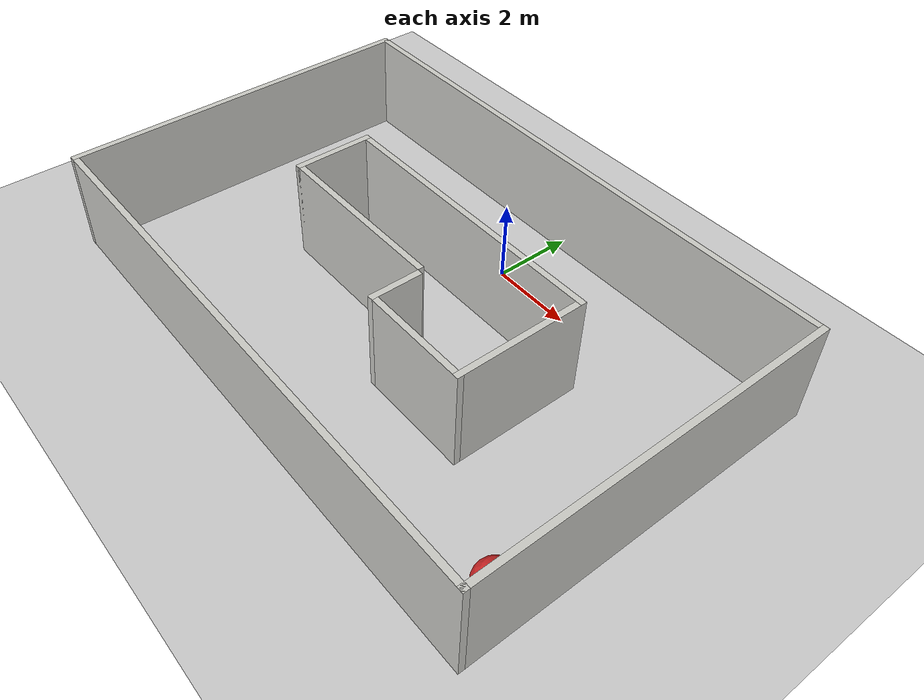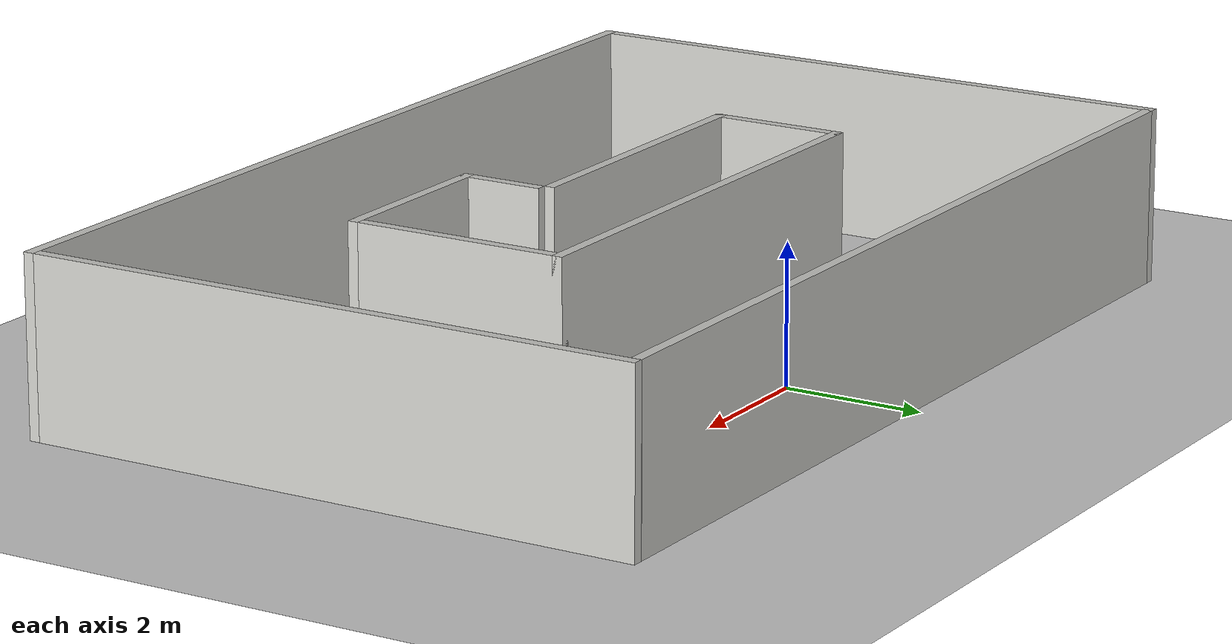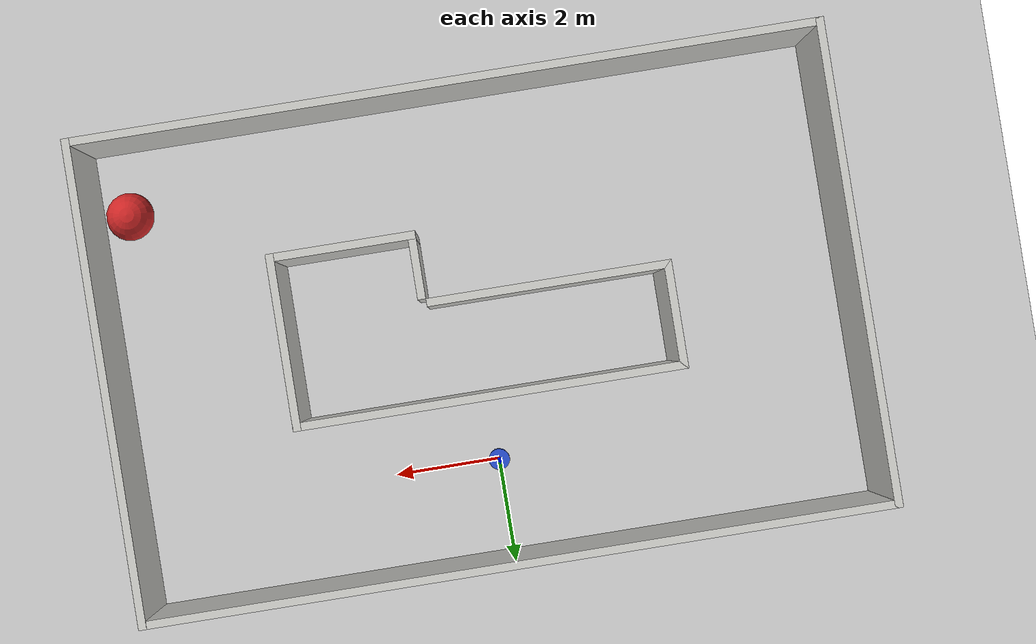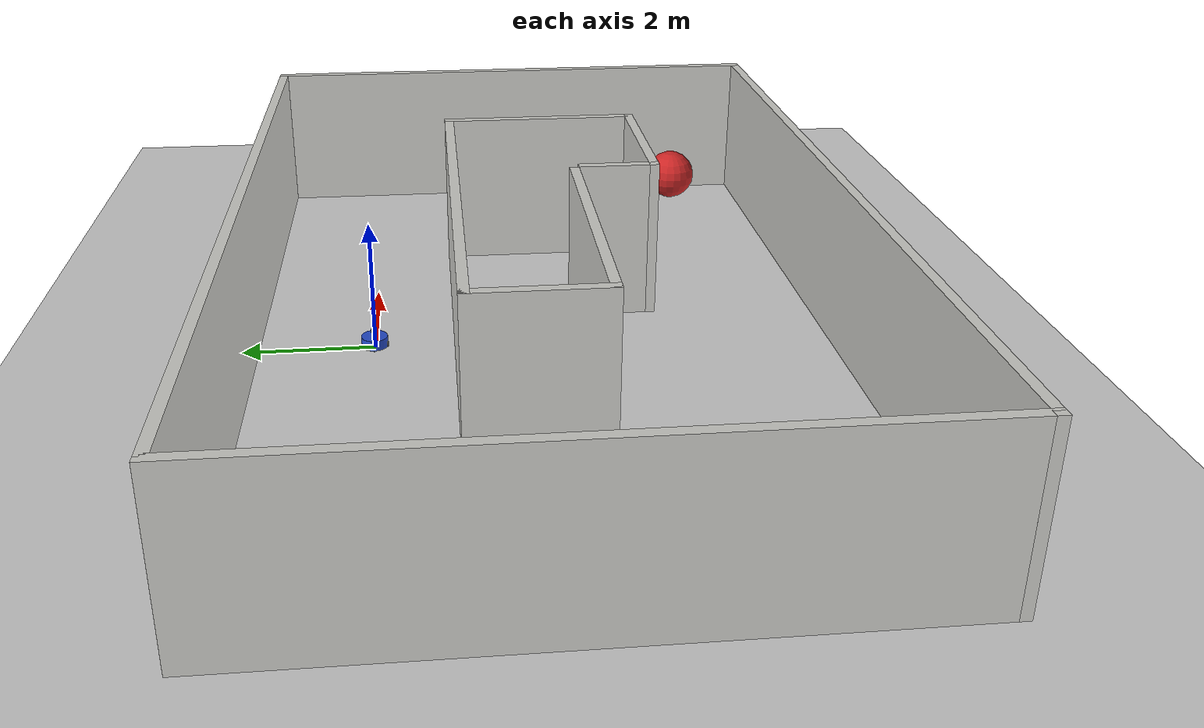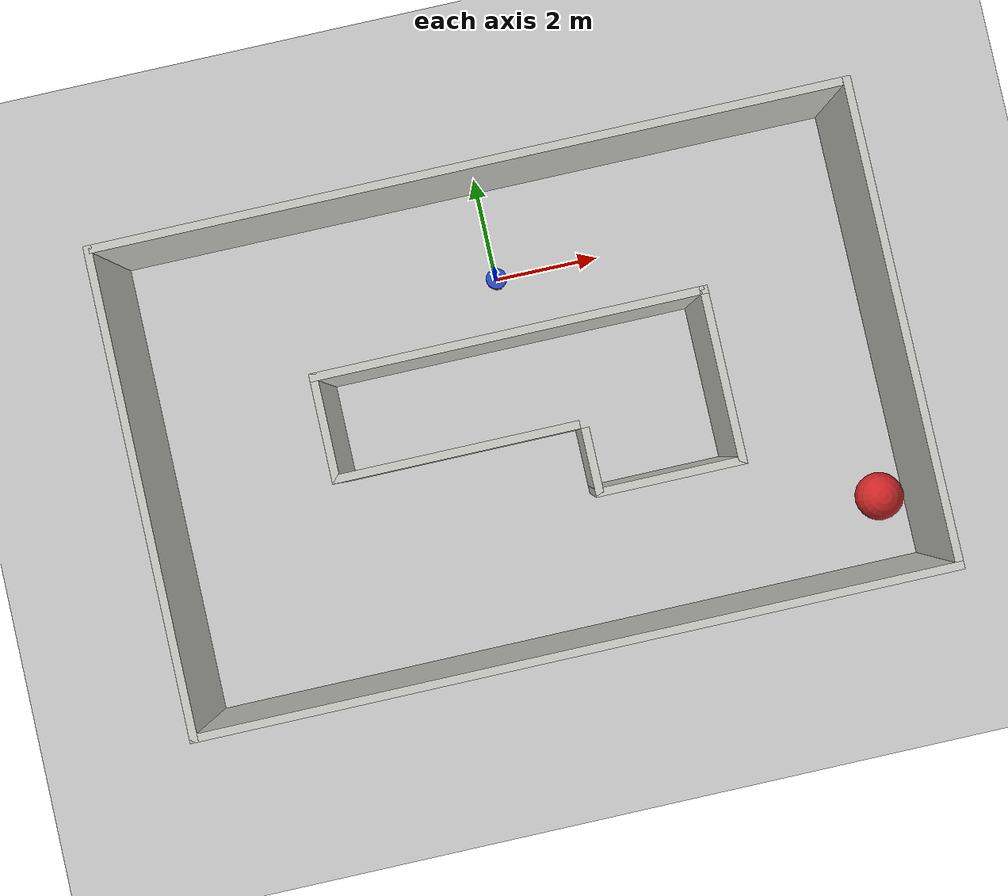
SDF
<sdf version="1.6">
 <world name="default">
  <light name="sun" type="directional">
   <pose>0 0 10 0 -0 0</pose>
   <diffuse>0.8 0.8 0.8 1</diffuse>
   <specular>0.2 0.2 0.2 1</specular>
   <attenuation>
    <range>1000</range>
    <constant>0.9</constant>
    <linear>0.01</linear>
    <quadratic>0.001</quadratic>
   </attenuation>
   <direction>-0.5 0.1 -0.9</direction>
  </light>
  <model name="ground_plane">
   <static>1</static>
   <link name="link">
    <collision name="collision">
     <geometry><plane><normal>0 0 1</normal><size>100 100</size></plane></geometry>
     <surface><friction><ode><mu>100</mu><mu2>50</mu2></ode></friction></surface>
    </collision>
    <visual name="visual">
     <cast_shadows>0</cast_shadows>
     <geometry><plane><normal>0 0 1</normal><size>100 100</size></plane></geometry>
     <material>
      <script><uri>file://media/materials/scripts/gazebo.material</uri><name>Gazebo/Grey</name></script>
     </material>
    </visual>
    <velocity_decay><linear>0</linear><angular>0</angular></velocity_decay>
   </link>
  </model>
  <physics name="default_physics" default="0" type="ode">
   <max_step_size>0.001</max_step_size>
   <real_time_factor>1</real_time_factor>
   <real_time_update_rate>1000</real_time_update_rate>
  </physics>
  <scene><ambient>0.4 0.4 0.4 1</ambient><background>0.7 0.7 0.7 1</background><shadows>1</shadows></scene>
  <spherical_coordinates>
   <surface_model>EARTH_WGS84</surface_model>
   <latitude_deg>0</latitude_deg>
   <longitude_deg>0</longitude_deg>
   <elevation>0</elevation>
   <heading_deg>0</heading_deg>
  </spherical_coordinates>
  <gravity>0 0 -9.8</gravity>
  <magnetic_field>6e-06 2.3e-05 -4.2e-05</magnetic_field>
  <atmosphere type="adiabatic"/>
  <model name="room_0">
   <pose>-0.064136 -2.60385 0 0 -0 0</pose>
   <link name="Wall_0">
    <collision name="Wall_0_Collision">
     <geometry><box><size>13.75 0.15 2.5</size></box></geometry>
     <pose>0 0 1.25 0 -0 0</pose>
    </collision>
    <visual name="Wall_0_Visual">
     <pose>0 0 1.25 0 -0 0</pose>
     <geometry><box><size>13.75 0.15 2.5</size></box></geometry>
     <material>
      <script><uri>file://media/materials/scripts/gazebo.material</uri><name>Gazebo/CeilingTiled</name></script>
      <ambient>1 1 1 1</ambient>
     </material>
    </visual>
    <pose>-0.027328 4.425 0 0 -0 0</pose>
   </link>
   <link name="Wall_12">
    <collision name="Wall_12_Collision">
     <geometry><box><size>2 0.15 2.5</size></box></geometry>
     <pose>0 0 1.25 0 -0 0</pose>
    </collision>
    <visual name="Wall_12_Visual">
     <pose>0 0 1.25 0 -0 0</pose>
     <geometry><box><size>2 0.15 2.5</size></box></geometry>
     <material>
      <script><uri>file://media/materials/scripts/gazebo.material</uri><name>Gazebo/CeilingTiled</name></script>
      <ambient>1 1 1 1</ambient>
     </material>
    </visual>
    <pose>-3.49908 0.404259 0 0 0 -1.5708</pose>
   </link>
   <link name="Wall_13">
    <collision name="Wall_13_Collision">
     <geometry><box><size>4.5 0.15 2.5</size></box></geometry>
     <pose>0 0 1.25 0 -0 0</pose>
    </collision>
    <visual name="Wall_13_Visual">
     <pose>0 0 1.25 0 -0 0</pose>
     <geometry><box><size>4.5 0.15 2.5</size></box></geometry>
     <material>
      <script><uri>file://media/materials/scripts/gazebo.material</uri><name>Gazebo/CeilingTiled</name></script>
      <ambient>1 1 1 1</ambient>
     </material>
    </visual>
    <pose>-1.32408 -0.520741 0 0 -0 0</pose>
   </link>
   <link name="Wall_2">
    <collision name="Wall_2_Collision">
     <geometry><box><size>9 0.15 2.5</size></box></geometry>
     <pose>0 0 1.25 0 -0 0</pose>
    </collision>
    <visual name="Wall_2_Visual">
     <pose>0 0 1.25 0 -0 0</pose>
     <geometry><box><size>9 0.15 2.5</size></box></geometry>
     <material>
      <script><uri>file://media/materials/scripts/gazebo.material</uri><name>Gazebo/CeilingTiled</name></script>
      <ambient>1 1 1 1</ambient>
     </material>
    </visual>
    <pose>6.925 0 0 0 0 -1.5708</pose>
   </link>
   <link name="Wall_3">
    <collision name="Wall_3_Collision">
     <geometry><box><size>14 0.15 2.5</size></box></geometry>
     <pose>0 0 1.25 0 -0 0</pose>
    </collision>
    <visual name="Wall_3_Visual">
     <pose>0 0 1.25 0 -0 0</pose>
     <geometry><box><size>14 0.15 2.5</size></box></geometry>
     <material>
      <script><uri>file://media/materials/scripts/gazebo.material</uri><name>Gazebo/CeilingTiled</name></script>
      <ambient>1 1 1 1</ambient>
     </material>
    </visual>
    <pose>0 -4.425 0 0 -0 3.14159</pose>
   </link>
   <link name="Wall_4">
    <collision name="Wall_4_Collision">
     <geometry><box><size>9 0.15 2.5</size></box></geometry>
     <pose>0 0 1.25 0 -0 0</pose>
    </collision>
    <visual name="Wall_4_Visual">
     <pose>0 0 1.25 0 -0 0</pose>
     <geometry><box><size>9 0.15 2.5</size></box></geometry>
     <material>
      <script><uri>file://media/materials/scripts/gazebo.material</uri><name>Gazebo/CeilingTiled</name></script>
      <ambient>1 1 1 1</ambient>
     </material>
    </visual>
    <pose>-6.925 0 0 0 -0 1.5708</pose>
   </link>
   <link name="Wall_6">
    <collision name="Wall_6_Collision">
     <geometry><box><size>7.25 0.15 2.5</size></box></geometry>
     <pose>0 0 1.25 0 -0 0</pose>
    </collision>
    <visual name="Wall_6_Visual">
     <pose>0 0 1.25 0 -0 0</pose>
     <geometry><box><size>7.25 0.15 2.5</size></box></geometry>
     <material>
      <script><uri>file://media/materials/scripts/gazebo.material</uri><name>Gazebo/CeilingTiled</name></script>
      <ambient>1 1 1 1</ambient>
     </material>
    </visual>
    <pose>0.050923 1.32926 0 0 -0 0</pose>
   </link>
   <link name="Wall_7">
    <collision name="Wall_7_Collision">
     <geometry><box><size>3.25 0.15 2.5</size></box></geometry>
     <pose>0 0 1.25 0 -0 0</pose>
    </collision>
    <visual name="Wall_7_Visual">
     <pose>0 0 1.25 0 -0 0</pose>
     <geometry><box><size>3.25 0.15 2.5</size></box></geometry>
     <material>
      <script><uri>file://media/materials/scripts/gazebo.material</uri><name>Gazebo/CeilingTiled</name></script>
      <ambient>1 1 1 1</ambient>
     </material>
    </visual>
    <pose>3.60092 -0.220741 0 0 0 -1.5708</pose>
   </link>
   <link name="Wall_8">
    <collision name="Wall_8_Collision">
     <geometry><box><size>2.75 0.15 2.5</size></box></geometry>
     <pose>0 0 1.25 0 -0 0</pose>
    </collision>
    <visual name="Wall_8_Visual">
     <pose>0 0 1.25 0 -0 0</pose>
     <geometry><box><size>2.75 0.15 2.5</size></box></geometry>
     <material>
      <script><uri>file://media/materials/scripts/gazebo.material</uri><name>Gazebo/CeilingTiled</name></script>
      <ambient>1 1 1 1</ambient>
     </material>
    </visual>
    <pose>2.30092 -1.77074 0 0 -0 3.14159</pose>
   </link>
   <link name="Wall_9">
    <collision name="Wall_9_Collision">
     <geometry><box><size>1.25 0.15 2.5</size></box></geometry>
     <pose>0 0 1.25 0 -0 0</pose>
    </collision>
    <visual name="Wall_9_Visual">
     <pose>0 0 1.25 0 -0 0</pose>
     <geometry><box><size>1.25 0.15 2.5</size></box></geometry>
     <material>
      <script><uri>file://media/materials/scripts/gazebo.material</uri><name>Gazebo/CeilingTiled</name></script>
      <ambient>1 1 1 1</ambient>
     </material>
    </visual>
    <pose>1.00092 -1.22074 0 0 -0 1.5708</pose>
   </link>
   <static>1</static>
  </model>
  <audio><device>default</device></audio>
  <model name="mbot">
   <link name="base_footprint">
    <inertial>
     <pose>0.013077 0 0.138462 0 -0 0</pose>
     <mass>1.3</mass>
     <inertia>
      <ixx>0.0360561</ixx>
      <ixy>0</ixy>
      <ixz>-0.00121615</ixz>
      <iyy>0.0387238</iyy>
      <iyz>0</iyz>
      <izz>0.0426727</izz>
     </inertia>
    </inertial>
    <collision name="base_footprint_fixed_joint_lump__base_link_collision">
     <pose>0 0 0.11 0 -0 0</pose>
     <geometry><cylinder><length>0.16</length><radius>0.2</radius></cylinder></geometry>
    </collision>
    <collision name="base_footprint_fixed_joint_lump__camera_link_collision_1">
     <pose>0.17 0 0.21 0 -0 0</pose>
     <geometry><box><size>0.01 0.04 0.04</size></box></geometry>
    </collision>
    <collision name="base_footprint_fixed_joint_lump__pillar_link_collision_2">
     <pose>0 0 0.21 0 -0 0</pose>
     <geometry><cylinder><length>0.1</length><radius>0.01</radius></cylinder></geometry>
    </collision>
    <collision name="base_footprint_fixed_joint_lump__laser_link_collision_3">
     <pose>0 0 0.28 0 -0 0</pose>
     <geometry><cylinder><length>0.06</length><radius>0.05</radius></cylinder></geometry>
    </collision>
    <visual name="base_footprint_visual">
     <geometry><box><size>0.001 0.001 0.001</size></box></geometry>
     <material><script><uri>__default__</uri><name>__default__</name></script></material>
    </visual>
    <visual name="base_footprint_fixed_joint_lump__base_link_visual_1">
     <pose>0 0 0.11 0 -0 0</pose>
     <geometry><cylinder><length>0.16</length><radius>0.2</radius></cylinder></geometry>
     <material>
      <script><name>Gazebo/Blue</name><uri>file://media/materials/scripts/gazebo.material</uri></script>
     </material>
    </visual>
    <visual name="base_footprint_fixed_joint_lump__camera_link_visual_2">
     <pose>0.17 0 0.21 0 -0 0</pose>
     <geometry><box><size>0.01 0.04 0.04</size></box></geometry>
     <material>
      <script><name>Gazebo/Black</name><uri>file://media/materials/scripts/gazebo.material</uri></script>
     </material>
    </visual>
    <visual name="base_footprint_fixed_joint_lump__pillar_link_visual_3">
     <pose>0 0 0.21 0 -0 0</pose>
     <geometry><cylinder><length>0.1</length><radius>0.01</radius></cylinder></geometry>
    </visual>
    <visual name="base_footprint_fixed_joint_lump__laser_link_visual_4">
     <pose>0 0 0.28 0 -0 0</pose>
     <geometry><cylinder><length>0.05</length><radius>0.05</radius></cylinder></geometry>
     <material>
      <script><name>Gazebo/Black</name><uri>file://media/materials/scripts/gazebo.material</uri></script>
     </material>
    </visual>
    <sensor name="camera_node" type="camera">
     <update_rate>20</update_rate>
     <camera name="head">
      <horizontal_fov>1.39626</horizontal_fov>
      <image><width>1280</width><height>720</height><format>R8G8B8</format></image>
      <clip><near>0.02</near><far>300</far></clip>
      <noise><type>gaussian</type><mean>0</mean><stddev>0.007</stddev></noise>
     </camera>
     <plugin name="gazebo_camera" filename="libgazebo_ros_camera.so">
      <alwaysOn>1</alwaysOn>
      <updateRate>0.0</updateRate>
      <cameraName>/camera</cameraName>
      <imageTopicName>image_raw</imageTopicName>
      <cameraInfoTopicName>camera_info</cameraInfoTopicName>
      <frameName>camera_link</frameName>
      <hackBaseline>0.07</hackBaseline>
      <distortionK1>0.0</distortionK1>
      <distortionK2>0.0</distortionK2>
      <distortionK3>0.0</distortionK3>
      <distortionT1>0.0</distortionT1>
      <distortionT2>0.0</distortionT2>
      <robotNamespace>/</robotNamespace>
     </plugin>
     <pose>0.17 0 0.21 0 -0 0</pose>
    </sensor>
    <sensor name="rplidar" type="ray">
     <visualize>0</visualize>
     <update_rate>5.5</update_rate>
     <ray>
      <scan>
       <horizontal>
        <samples>360</samples>
        <resolution>1</resolution>
        <min_angle>-3</min_angle>
        <max_angle>3</max_angle>
       </horizontal>
       <vertical><samples>1</samples><min_angle>0</min_angle><max_angle>0</max_angle></vertical>
      </scan>
      <range><min>0.1</min><max>6</max><resolution>0.01</resolution></range>
      <noise><type>gaussian</type><mean>0</mean><stddev>0.01</stddev></noise>
     </ray>
     <plugin name="gazebo_rplidar" filename="libgazebo_ros_laser.so">
      <topicName>/scan</topicName>
      <frameName>laser_link</frameName>
      <robotNamespace>/</robotNamespace>
     </plugin>
     <pose>0 0 0.28 0 -0 0</pose>
    </sensor>
   </link>
   <link name="back_caster_link">
    <pose>0.18 0 0.015 0 -0 0</pose>
    <inertial>
     <mass>0.2</mass>
     <inertia><ixx>1.8e-05</ixx><ixy>0</ixy><ixz>0</ixz><iyy>1.8e-05</iyy><iyz>0</iyz><izz>1.8e-05</izz></inertia>
    </inertial>
    <collision name="back_caster_link_collision">
     <geometry><sphere><radius>0.015</radius></sphere></geometry>
    </collision>
    <visual name="back_caster_link_visual">
     <geometry><sphere><radius>0.015</radius></sphere></geometry>
     <material>
      <script><name>Gazebo/Black</name><uri>file://media/materials/scripts/gazebo.material</uri></script>
     </material>
    </visual>
   </link>
   <joint name="back_caster_joint" type="revolute">
    <child>back_caster_link</child>
    <parent>base_footprint</parent>
    <axis>
     <xyz>0 1 0</xyz>
     <limit><lower>-1e+16</lower><upper>1e+16</upper></limit>
     <dynamics><spring_reference>0</spring_reference><spring_stiffness>0</spring_stiffness></dynamics>
     <use_parent_model_frame>1</use_parent_model_frame>
    </axis>
   </joint>
   <link name="front_caster_link">
    <pose>-0.18 0 0.015 0 -0 0</pose>
    <inertial>
     <mass>0.2</mass>
     <inertia><ixx>1.8e-05</ixx><ixy>0</ixy><ixz>0</ixz><iyy>1.8e-05</iyy><iyz>0</iyz><izz>1.8e-05</izz></inertia>
    </inertial>
    <collision name="front_caster_link_collision">
     <geometry><sphere><radius>0.015</radius></sphere></geometry>
    </collision>
    <visual name="front_caster_link_visual">
     <geometry><sphere><radius>0.015</radius></sphere></geometry>
     <material>
      <script><name>Gazebo/Black</name><uri>file://media/materials/scripts/gazebo.material</uri></script>
     </material>
    </visual>
   </link>
   <joint name="front_caster_joint" type="revolute">
    <child>front_caster_link</child>
    <parent>base_footprint</parent>
    <axis>
     <xyz>0 1 0</xyz>
     <limit><lower>-1e+16</lower><upper>1e+16</upper></limit>
     <dynamics><spring_reference>0</spring_reference><spring_stiffness>0</spring_stiffness></dynamics>
     <use_parent_model_frame>1</use_parent_model_frame>
    </axis>
   </joint>
   <link name="left_wheel_link">
    <pose>0 0.19 0.06 0 -0 0</pose>
    <inertial>
     <mass>0.2</mass>
     <inertia>
      <ixx>0.000190417</ixx>
      <ixy>0</ixy>
      <ixz>0</ixz>
      <iyy>0.000190417</iyy>
      <iyz>0</iyz>
      <izz>0.00036</izz>
     </inertia>
    </inertial>
    <collision name="left_wheel_link_collision">
     <pose>0 0 0 1.5708 -0 0</pose>
     <geometry><cylinder><length>0.025</length><radius>0.06</radius></cylinder></geometry>
    </collision>
    <visual name="left_wheel_link_visual">
     <pose>0 0 0 1.5708 -0 0</pose>
     <geometry><cylinder><length>0.025</length><radius>0.06</radius></cylinder></geometry>
     <material>
      <script><name>Gazebo/Gray</name><uri>file://media/materials/scripts/gazebo.material</uri></script>
     </material>
    </visual>
   </link>
   <joint name="left_wheel_joint" type="revolute">
    <child>left_wheel_link</child>
    <parent>base_footprint</parent>
    <axis>
     <xyz>0 1 0</xyz>
     <limit><lower>-1e+16</lower><upper>1e+16</upper></limit>
     <dynamics><spring_reference>0</spring_reference><spring_stiffness>0</spring_stiffness></dynamics>
     <use_parent_model_frame>1</use_parent_model_frame>
    </axis>
   </joint>
   <link name="right_wheel_link">
    <pose>0 -0.19 0.06 0 -0 0</pose>
    <inertial>
     <mass>0.2</mass>
     <inertia>
      <ixx>0.000190417</ixx>
      <ixy>0</ixy>
      <ixz>0</ixz>
      <iyy>0.000190417</iyy>
      <iyz>0</iyz>
      <izz>0.00036</izz>
     </inertia>
    </inertial>
    <collision name="right_wheel_link_collision">
     <pose>0 0 0 1.5708 -0 0</pose>
     <geometry><cylinder><length>0.025</length><radius>0.06</radius></cylinder></geometry>
    </collision>
    <visual name="right_wheel_link_visual">
     <pose>0 0 0 1.5708 -0 0</pose>
     <geometry><cylinder><length>0.025</length><radius>0.06</radius></cylinder></geometry>
     <material>
      <script><name>Gazebo/Gray</name><uri>file://media/materials/scripts/gazebo.material</uri></script>
     </material>
    </visual>
   </link>
   <joint name="right_wheel_joint" type="revolute">
    <child>right_wheel_link</child>
    <parent>base_footprint</parent>
    <axis>
     <xyz>0 1 0</xyz>
     <limit><lower>-1e+16</lower><upper>1e+16</upper></limit>
     <dynamics><spring_reference>0</spring_reference><spring_stiffness>0</spring_stiffness></dynamics>
     <use_parent_model_frame>1</use_parent_model_frame>
    </axis>
   </joint>
   <static>0</static>
   <plugin name="differential_drive_controller" filename="libgazebo_ros_diff_drive.so">
    <rosDebugLevel>Debug</rosDebugLevel>
    <publishWheelTF>1</publishWheelTF>
    <robotNamespace>/</robotNamespace>
    <publishTf>1</publishTf>
    <publishWheelJointState>1</publishWheelJointState>
    <alwaysOn>1</alwaysOn>
    <updateRate>100.0</updateRate>
    <legacyMode>1</legacyMode>
    <leftJoint>left_wheel_joint</leftJoint>
    <rightJoint>right_wheel_joint</rightJoint>
    <wheelSeparation>0.38</wheelSeparation>
    <wheelDiameter>0.12</wheelDiameter>
    <broadcastTF>1</broadcastTF>
    <wheelTorque>30</wheelTorque>
    <wheelAcceleration>1.8</wheelAcceleration>
    <commandTopic>cmd_vel</commandTopic>
    <odometryFrame>odom</odometryFrame>
    <odometryTopic>odom</odometryTopic>
    <robotBaseFrame>base_footprint</robotBaseFrame>
   </plugin>
   <pose>0.008652 0.009438 0 1e-06 -0 0.004108</pose>
  </model>
  <model name="RoboCup SPL Ball">
   <static>0</static>
   <link name="ball">
    <inertial>
     <mass>0.0056</mass>
     <inertia>
      <ixx>2.37e-06</ixx>
      <iyy>2.37e-06</iyy>
      <izz>2.37e-06</izz>
      <ixy>0</ixy>
      <ixz>0</ixz>
      <iyz>0</iyz>
     </inertia>
    </inertial>
    <collision name="collision"><geometry><sphere><radius>0.458026</radius></sphere></geometry></collision>
    <visual name="visual">
     <geometry><sphere><radius>0.458026</radius></sphere></geometry>
     <material>
      <script><uri>file://media/materials/scripts/gazebo.material</uri><name>Gazebo/RedBright</name></script>
     </material>
    </visual>
   </link>
   <pose>6.22501 -5.69576 0.458025 0 -0 0</pose>
  </model>
 </world>
</sdf>
